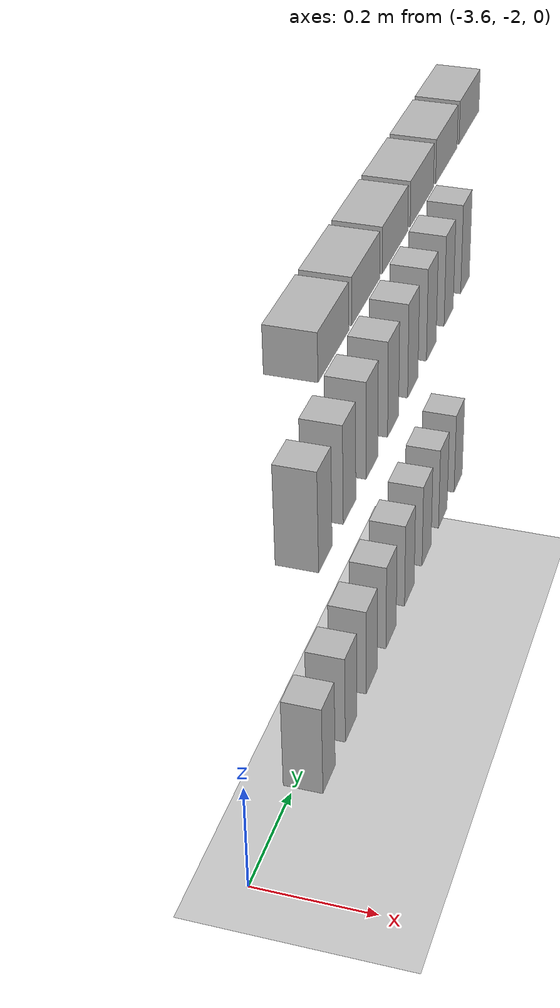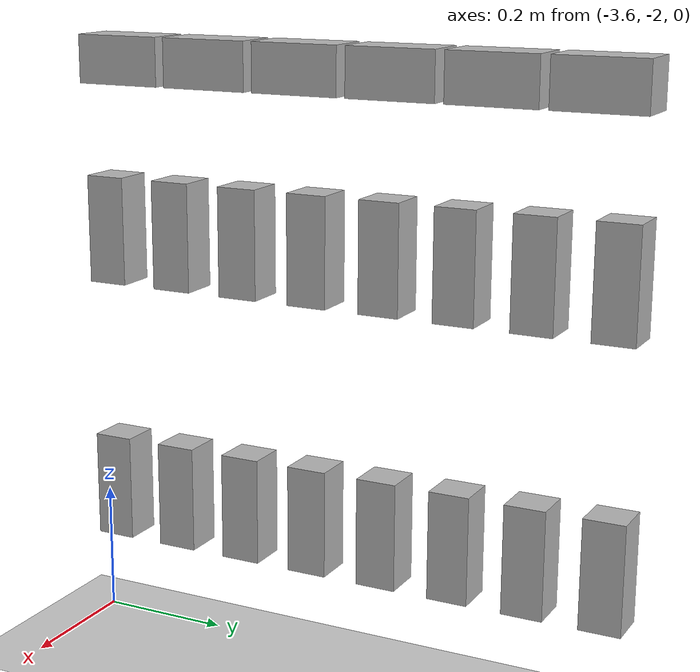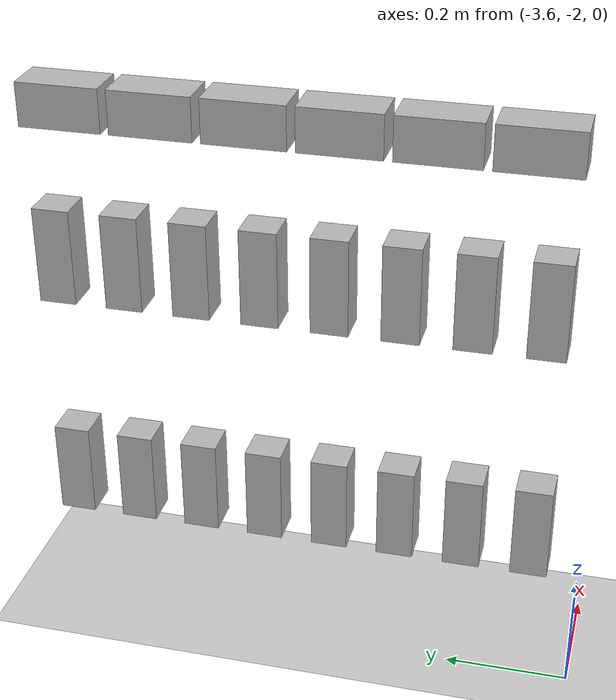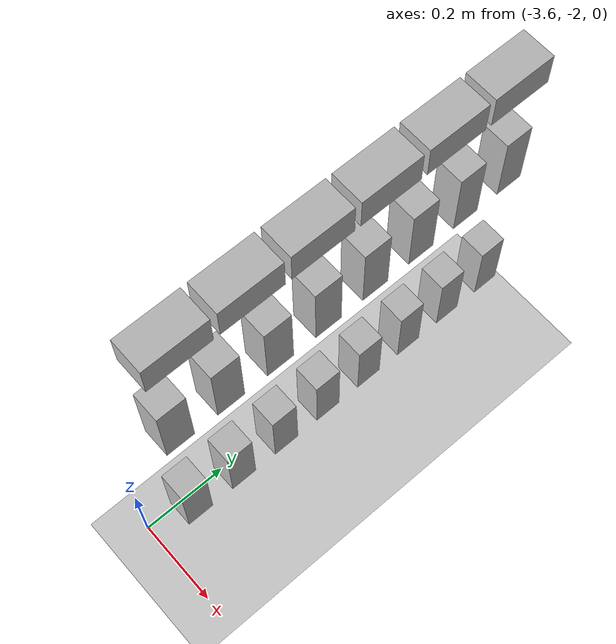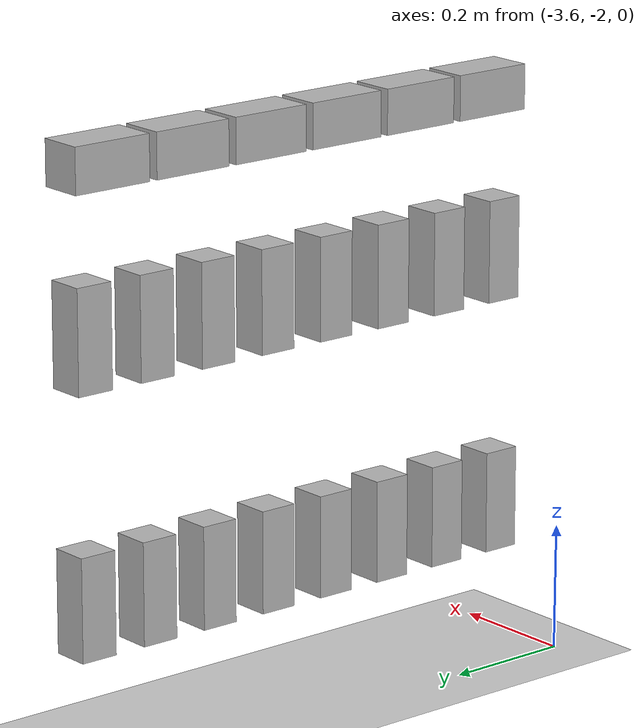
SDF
<sdf version="1.7">
 <world name="default">
  <model name="ground_plane">
   <static>1</static>
   <link name="link">
    <collision name="collision">
     <geometry><plane><normal>0 0 1</normal><size>100 100</size></plane></geometry>
     <surface>
      <contact><collide_bitmask>65535</collide_bitmask></contact>
      <friction><ode><mu>100</mu><mu2>50</mu2></ode></friction>
     </surface>
    </collision>
    <visual name="visual">
     <cast_shadows>0</cast_shadows>
     <geometry><plane><normal>0 0 1</normal><size>100 100</size></plane></geometry>
     <material>
      <script><uri>file://media/materials/scripts/gazebo.material</uri><name>Gazebo/Grey</name></script>
     </material>
    </visual>
   </link>
  </model>
  <model name="AH_shelf_filled">
   <static>1</static>
   <model name="board1">
    <pose>0 0.5 0.25 0 -0 0</pose>
    <static>0</static>
    <link name="AH_hagelslag_puur::link_0">
     <inertial>
      <mass>0.1</mass>
      <inertia><ixx>0.0014</ixx><ixy>0</ixy><ixz>0</ixz><iyy>0.0014</iyy><iyz>0</iyz><izz>0.0028</izz></inertia>
     </inertial>
     <pose>0.111111 0 0 0 -0 1.57</pose>
     <visual name="visual">
      <geometry>
       <mesh><uri>model://AH_hagelslag_puur/AH_hagelslag_puur/AH_hagelslag_puur.dae</uri><scale>1 1 1</scale></mesh>
      </geometry>
     </visual>
     <collision name="collision">
      <geometry>
       <mesh><uri>model://AH_hagelslag_puur/AH_hagelslag_puur/AH_hagelslag_puur.dae</uri><scale>1 1 1</scale></mesh>
      </geometry>
      <surface>
       <friction>
        <ode><mu>1</mu><mu2>1</mu2><fdir1>0 0 0</fdir1><slip1>0</slip1><slip2>0</slip2></ode>
        <torsional>
         <coefficient>1</coefficient>
         <patch_radius>0</patch_radius>
         <surface_radius>0</surface_radius>
         <use_patch_radius>1</use_patch_radius>
         <ode><slip>0</slip></ode>
        </torsional>
       </friction>
       <bounce><restitution_coefficient>0</restitution_coefficient><threshold>1e+06</threshold></bounce>
       <contact>
        <collide_without_contact>0</collide_without_contact>
        <collide_without_contact_bitmask>1</collide_without_contact_bitmask>
        <collide_bitmask>1</collide_bitmask>
        <ode>
         <soft_cfm>0</soft_cfm>
         <soft_erp>0.2</soft_erp>
         <kp>1e+13</kp>
         <kd>1</kd>
         <max_vel>0.01</max_vel>
         <min_depth>0</min_depth>
        </ode>
        <bullet>
         <split_impulse>1</split_impulse>
         <split_impulse_penetration_threshold>-0.01</split_impulse_penetration_threshold>
         <soft_cfm>0</soft_cfm>
         <soft_erp>0.2</soft_erp>
         <kp>1e+13</kp>
         <kd>1</kd>
        </bullet>
       </contact>
      </surface>
     </collision>
    </link>
    <static>0</static>
    <link name="AH_hagelslag_puur::link_0">
     <inertial>
      <mass>0.1</mass>
      <inertia><ixx>0.0014</ixx><ixy>0</ixy><ixz>0</ixz><iyy>0.0014</iyy><iyz>0</iyz><izz>0.0028</izz></inertia>
     </inertial>
     <pose>0.222222 0 0 0 -0 1.57</pose>
     <visual name="visual">
      <geometry>
       <mesh><uri>model://AH_hagelslag_puur/AH_hagelslag_puur/AH_hagelslag_puur.dae</uri><scale>1 1 1</scale></mesh>
      </geometry>
     </visual>
     <collision name="collision">
      <geometry>
       <mesh><uri>model://AH_hagelslag_puur/AH_hagelslag_puur/AH_hagelslag_puur.dae</uri><scale>1 1 1</scale></mesh>
      </geometry>
      <surface>
       <friction>
        <ode><mu>1</mu><mu2>1</mu2><fdir1>0 0 0</fdir1><slip1>0</slip1><slip2>0</slip2></ode>
        <torsional>
         <coefficient>1</coefficient>
         <patch_radius>0</patch_radius>
         <surface_radius>0</surface_radius>
         <use_patch_radius>1</use_patch_radius>
         <ode><slip>0</slip></ode>
        </torsional>
       </friction>
       <bounce><restitution_coefficient>0</restitution_coefficient><threshold>1e+06</threshold></bounce>
       <contact>
        <collide_without_contact>0</collide_without_contact>
        <collide_without_contact_bitmask>1</collide_without_contact_bitmask>
        <collide_bitmask>1</collide_bitmask>
        <ode>
         <soft_cfm>0</soft_cfm>
         <soft_erp>0.2</soft_erp>
         <kp>1e+13</kp>
         <kd>1</kd>
         <max_vel>0.01</max_vel>
         <min_depth>0</min_depth>
        </ode>
        <bullet>
         <split_impulse>1</split_impulse>
         <split_impulse_penetration_threshold>-0.01</split_impulse_penetration_threshold>
         <soft_cfm>0</soft_cfm>
         <soft_erp>0.2</soft_erp>
         <kp>1e+13</kp>
         <kd>1</kd>
        </bullet>
       </contact>
      </surface>
     </collision>
    </link>
    <static>0</static>
    <link name="AH_hagelslag_puur::link_0">
     <inertial>
      <mass>0.1</mass>
      <inertia><ixx>0.0014</ixx><ixy>0</ixy><ixz>0</ixz><iyy>0.0014</iyy><iyz>0</iyz><izz>0.0028</izz></inertia>
     </inertial>
     <pose>0.333333 0 0 0 -0 1.57</pose>
     <visual name="visual">
      <geometry>
       <mesh><uri>model://AH_hagelslag_puur/AH_hagelslag_puur/AH_hagelslag_puur.dae</uri><scale>1 1 1</scale></mesh>
      </geometry>
     </visual>
     <collision name="collision">
      <geometry>
       <mesh><uri>model://AH_hagelslag_puur/AH_hagelslag_puur/AH_hagelslag_puur.dae</uri><scale>1 1 1</scale></mesh>
      </geometry>
      <surface>
       <friction>
        <ode><mu>1</mu><mu2>1</mu2><fdir1>0 0 0</fdir1><slip1>0</slip1><slip2>0</slip2></ode>
        <torsional>
         <coefficient>1</coefficient>
         <patch_radius>0</patch_radius>
         <surface_radius>0</surface_radius>
         <use_patch_radius>1</use_patch_radius>
         <ode><slip>0</slip></ode>
        </torsional>
       </friction>
       <bounce><restitution_coefficient>0</restitution_coefficient><threshold>1e+06</threshold></bounce>
       <contact>
        <collide_without_contact>0</collide_without_contact>
        <collide_without_contact_bitmask>1</collide_without_contact_bitmask>
        <collide_bitmask>1</collide_bitmask>
        <ode>
         <soft_cfm>0</soft_cfm>
         <soft_erp>0.2</soft_erp>
         <kp>1e+13</kp>
         <kd>1</kd>
         <max_vel>0.01</max_vel>
         <min_depth>0</min_depth>
        </ode>
        <bullet>
         <split_impulse>1</split_impulse>
         <split_impulse_penetration_threshold>-0.01</split_impulse_penetration_threshold>
         <soft_cfm>0</soft_cfm>
         <soft_erp>0.2</soft_erp>
         <kp>1e+13</kp>
         <kd>1</kd>
        </bullet>
       </contact>
      </surface>
     </collision>
    </link>
    <static>0</static>
    <link name="AH_hagelslag_puur::link_0">
     <inertial>
      <mass>0.1</mass>
      <inertia><ixx>0.0014</ixx><ixy>0</ixy><ixz>0</ixz><iyy>0.0014</iyy><iyz>0</iyz><izz>0.0028</izz></inertia>
     </inertial>
     <pose>0.444444 0 0 0 -0 1.57</pose>
     <visual name="visual">
      <geometry>
       <mesh><uri>model://AH_hagelslag_puur/AH_hagelslag_puur/AH_hagelslag_puur.dae</uri><scale>1 1 1</scale></mesh>
      </geometry>
     </visual>
     <collision name="collision">
      <geometry>
       <mesh><uri>model://AH_hagelslag_puur/AH_hagelslag_puur/AH_hagelslag_puur.dae</uri><scale>1 1 1</scale></mesh>
      </geometry>
      <surface>
       <friction>
        <ode><mu>1</mu><mu2>1</mu2><fdir1>0 0 0</fdir1><slip1>0</slip1><slip2>0</slip2></ode>
        <torsional>
         <coefficient>1</coefficient>
         <patch_radius>0</patch_radius>
         <surface_radius>0</surface_radius>
         <use_patch_radius>1</use_patch_radius>
         <ode><slip>0</slip></ode>
        </torsional>
       </friction>
       <bounce><restitution_coefficient>0</restitution_coefficient><threshold>1e+06</threshold></bounce>
       <contact>
        <collide_without_contact>0</collide_without_contact>
        <collide_without_contact_bitmask>1</collide_without_contact_bitmask>
        <collide_bitmask>1</collide_bitmask>
        <ode>
         <soft_cfm>0</soft_cfm>
         <soft_erp>0.2</soft_erp>
         <kp>1e+13</kp>
         <kd>1</kd>
         <max_vel>0.01</max_vel>
         <min_depth>0</min_depth>
        </ode>
        <bullet>
         <split_impulse>1</split_impulse>
         <split_impulse_penetration_threshold>-0.01</split_impulse_penetration_threshold>
         <soft_cfm>0</soft_cfm>
         <soft_erp>0.2</soft_erp>
         <kp>1e+13</kp>
         <kd>1</kd>
        </bullet>
       </contact>
      </surface>
     </collision>
    </link>
    <static>0</static>
    <link name="AH_hagelslag_puur::link_0">
     <inertial>
      <mass>0.1</mass>
      <inertia><ixx>0.0014</ixx><ixy>0</ixy><ixz>0</ixz><iyy>0.0014</iyy><iyz>0</iyz><izz>0.0028</izz></inertia>
     </inertial>
     <pose>0.555556 0 0 0 -0 1.57</pose>
     <visual name="visual">
      <geometry>
       <mesh><uri>model://AH_hagelslag_puur/AH_hagelslag_puur/AH_hagelslag_puur.dae</uri><scale>1 1 1</scale></mesh>
      </geometry>
     </visual>
     <collision name="collision">
      <geometry>
       <mesh><uri>model://AH_hagelslag_puur/AH_hagelslag_puur/AH_hagelslag_puur.dae</uri><scale>1 1 1</scale></mesh>
      </geometry>
      <surface>
       <friction>
        <ode><mu>1</mu><mu2>1</mu2><fdir1>0 0 0</fdir1><slip1>0</slip1><slip2>0</slip2></ode>
        <torsional>
         <coefficient>1</coefficient>
         <patch_radius>0</patch_radius>
         <surface_radius>0</surface_radius>
         <use_patch_radius>1</use_patch_radius>
         <ode><slip>0</slip></ode>
        </torsional>
       </friction>
       <bounce><restitution_coefficient>0</restitution_coefficient><threshold>1e+06</threshold></bounce>
       <contact>
        <collide_without_contact>0</collide_without_contact>
        <collide_without_contact_bitmask>1</collide_without_contact_bitmask>
        <collide_bitmask>1</collide_bitmask>
        <ode>
         <soft_cfm>0</soft_cfm>
         <soft_erp>0.2</soft_erp>
         <kp>1e+13</kp>
         <kd>1</kd>
         <max_vel>0.01</max_vel>
         <min_depth>0</min_depth>
        </ode>
        <bullet>
         <split_impulse>1</split_impulse>
         <split_impulse_penetration_threshold>-0.01</split_impulse_penetration_threshold>
         <soft_cfm>0</soft_cfm>
         <soft_erp>0.2</soft_erp>
         <kp>1e+13</kp>
         <kd>1</kd>
        </bullet>
       </contact>
      </surface>
     </collision>
    </link>
    <static>0</static>
    <link name="AH_hagelslag_puur::link_0">
     <inertial>
      <mass>0.1</mass>
      <inertia><ixx>0.0014</ixx><ixy>0</ixy><ixz>0</ixz><iyy>0.0014</iyy><iyz>0</iyz><izz>0.0028</izz></inertia>
     </inertial>
     <pose>0.666667 0 0 0 -0 1.57</pose>
     <visual name="visual">
      <geometry>
       <mesh><uri>model://AH_hagelslag_puur/AH_hagelslag_puur/AH_hagelslag_puur.dae</uri><scale>1 1 1</scale></mesh>
      </geometry>
     </visual>
     <collision name="collision">
      <geometry>
       <mesh><uri>model://AH_hagelslag_puur/AH_hagelslag_puur/AH_hagelslag_puur.dae</uri><scale>1 1 1</scale></mesh>
      </geometry>
      <surface>
       <friction>
        <ode><mu>1</mu><mu2>1</mu2><fdir1>0 0 0</fdir1><slip1>0</slip1><slip2>0</slip2></ode>
        <torsional>
         <coefficient>1</coefficient>
         <patch_radius>0</patch_radius>
         <surface_radius>0</surface_radius>
         <use_patch_radius>1</use_patch_radius>
         <ode><slip>0</slip></ode>
        </torsional>
       </friction>
       <bounce><restitution_coefficient>0</restitution_coefficient><threshold>1e+06</threshold></bounce>
       <contact>
        <collide_without_contact>0</collide_without_contact>
        <collide_without_contact_bitmask>1</collide_without_contact_bitmask>
        <collide_bitmask>1</collide_bitmask>
        <ode>
         <soft_cfm>0</soft_cfm>
         <soft_erp>0.2</soft_erp>
         <kp>1e+13</kp>
         <kd>1</kd>
         <max_vel>0.01</max_vel>
         <min_depth>0</min_depth>
        </ode>
        <bullet>
         <split_impulse>1</split_impulse>
         <split_impulse_penetration_threshold>-0.01</split_impulse_penetration_threshold>
         <soft_cfm>0</soft_cfm>
         <soft_erp>0.2</soft_erp>
         <kp>1e+13</kp>
         <kd>1</kd>
        </bullet>
       </contact>
      </surface>
     </collision>
    </link>
    <static>0</static>
    <link name="AH_hagelslag_puur::link_0">
     <inertial>
      <mass>0.1</mass>
      <inertia><ixx>0.0014</ixx><ixy>0</ixy><ixz>0</ixz><iyy>0.0014</iyy><iyz>0</iyz><izz>0.0028</izz></inertia>
     </inertial>
     <pose>0.777778 0 0 0 -0 1.57</pose>
     <visual name="visual">
      <geometry>
       <mesh><uri>model://AH_hagelslag_puur/AH_hagelslag_puur/AH_hagelslag_puur.dae</uri><scale>1 1 1</scale></mesh>
      </geometry>
     </visual>
     <collision name="collision">
      <geometry>
       <mesh><uri>model://AH_hagelslag_puur/AH_hagelslag_puur/AH_hagelslag_puur.dae</uri><scale>1 1 1</scale></mesh>
      </geometry>
      <surface>
       <friction>
        <ode><mu>1</mu><mu2>1</mu2><fdir1>0 0 0</fdir1><slip1>0</slip1><slip2>0</slip2></ode>
        <torsional>
         <coefficient>1</coefficient>
         <patch_radius>0</patch_radius>
         <surface_radius>0</surface_radius>
         <use_patch_radius>1</use_patch_radius>
         <ode><slip>0</slip></ode>
        </torsional>
       </friction>
       <bounce><restitution_coefficient>0</restitution_coefficient><threshold>1e+06</threshold></bounce>
       <contact>
        <collide_without_contact>0</collide_without_contact>
        <collide_without_contact_bitmask>1</collide_without_contact_bitmask>
        <collide_bitmask>1</collide_bitmask>
        <ode>
         <soft_cfm>0</soft_cfm>
         <soft_erp>0.2</soft_erp>
         <kp>1e+13</kp>
         <kd>1</kd>
         <max_vel>0.01</max_vel>
         <min_depth>0</min_depth>
        </ode>
        <bullet>
         <split_impulse>1</split_impulse>
         <split_impulse_penetration_threshold>-0.01</split_impulse_penetration_threshold>
         <soft_cfm>0</soft_cfm>
         <soft_erp>0.2</soft_erp>
         <kp>1e+13</kp>
         <kd>1</kd>
        </bullet>
       </contact>
      </surface>
     </collision>
    </link>
    <static>0</static>
    <link name="AH_hagelslag_puur::link_0">
     <inertial>
      <mass>0.1</mass>
      <inertia><ixx>0.0014</ixx><ixy>0</ixy><ixz>0</ixz><iyy>0.0014</iyy><iyz>0</iyz><izz>0.0028</izz></inertia>
     </inertial>
     <pose>0.888889 0 0 0 -0 1.57</pose>
     <visual name="visual">
      <geometry>
       <mesh><uri>model://AH_hagelslag_puur/AH_hagelslag_puur/AH_hagelslag_puur.dae</uri><scale>1 1 1</scale></mesh>
      </geometry>
     </visual>
     <collision name="collision">
      <geometry>
       <mesh><uri>model://AH_hagelslag_puur/AH_hagelslag_puur/AH_hagelslag_puur.dae</uri><scale>1 1 1</scale></mesh>
      </geometry>
      <surface>
       <friction>
        <ode><mu>1</mu><mu2>1</mu2><fdir1>0 0 0</fdir1><slip1>0</slip1><slip2>0</slip2></ode>
        <torsional>
         <coefficient>1</coefficient>
         <patch_radius>0</patch_radius>
         <surface_radius>0</surface_radius>
         <use_patch_radius>1</use_patch_radius>
         <ode><slip>0</slip></ode>
        </torsional>
       </friction>
       <bounce><restitution_coefficient>0</restitution_coefficient><threshold>1e+06</threshold></bounce>
       <contact>
        <collide_without_contact>0</collide_without_contact>
        <collide_without_contact_bitmask>1</collide_without_contact_bitmask>
        <collide_bitmask>1</collide_bitmask>
        <ode>
         <soft_cfm>0</soft_cfm>
         <soft_erp>0.2</soft_erp>
         <kp>1e+13</kp>
         <kd>1</kd>
         <max_vel>0.01</max_vel>
         <min_depth>0</min_depth>
        </ode>
        <bullet>
         <split_impulse>1</split_impulse>
         <split_impulse_penetration_threshold>-0.01</split_impulse_penetration_threshold>
         <soft_cfm>0</soft_cfm>
         <soft_erp>0.2</soft_erp>
         <kp>1e+13</kp>
         <kd>1</kd>
        </bullet>
       </contact>
      </surface>
     </collision>
    </link>
   </model>
   <model name="board2">
    <pose>0 0.5 0.65 0 -0 0</pose>
    <static>0</static>
    <link name="AH_hagelslag_melk::link_0">
     <inertial>
      <mass>0.1</mass>
      <inertia><ixx>0.0014</ixx><ixy>0</ixy><ixz>0</ixz><iyy>0.0014</iyy><iyz>0</iyz><izz>0.0028</izz></inertia>
     </inertial>
     <pose>0.111111 0 0 0 -0 1.57</pose>
     <visual name="visual">
      <geometry>
       <mesh><uri>model://AH_hagelslag_melk/AH_hagelslag_melk/AH_hagelslag_melk.dae</uri><scale>1 1 1</scale></mesh>
      </geometry>
     </visual>
     <collision name="collision">
      <geometry>
       <mesh><uri>model://AH_hagelslag_melk/AH_hagelslag_melk/AH_hagelslag_melk.dae</uri><scale>1 1 1</scale></mesh>
      </geometry>
      <surface>
       <friction>
        <ode><mu>1</mu><mu2>1</mu2><fdir1>0 0 0</fdir1><slip1>0</slip1><slip2>0</slip2></ode>
        <torsional>
         <coefficient>1</coefficient>
         <patch_radius>0</patch_radius>
         <surface_radius>0</surface_radius>
         <use_patch_radius>1</use_patch_radius>
         <ode><slip>0</slip></ode>
        </torsional>
       </friction>
       <bounce><restitution_coefficient>0</restitution_coefficient><threshold>1e+06</threshold></bounce>
       <contact>
        <collide_without_contact>0</collide_without_contact>
        <collide_without_contact_bitmask>1</collide_without_contact_bitmask>
        <collide_bitmask>1</collide_bitmask>
        <ode>
         <soft_cfm>0</soft_cfm>
         <soft_erp>0.2</soft_erp>
         <kp>1e+13</kp>
         <kd>1</kd>
         <max_vel>0.01</max_vel>
         <min_depth>0</min_depth>
        </ode>
        <bullet>
         <split_impulse>1</split_impulse>
         <split_impulse_penetration_threshold>-0.01</split_impulse_penetration_threshold>
         <soft_cfm>0</soft_cfm>
         <soft_erp>0.2</soft_erp>
         <kp>1e+13</kp>
         <kd>1</kd>
        </bullet>
       </contact>
      </surface>
     </collision>
    </link>
    <static>0</static>
    <link name="AH_hagelslag_melk::link_0">
     <inertial>
      <mass>0.1</mass>
      <inertia><ixx>0.0014</ixx><ixy>0</ixy><ixz>0</ixz><iyy>0.0014</iyy><iyz>0</iyz><izz>0.0028</izz></inertia>
     </inertial>
     <pose>0.222222 0 0 0 -0 1.57</pose>
     <visual name="visual">
      <geometry>
       <mesh><uri>model://AH_hagelslag_melk/AH_hagelslag_melk/AH_hagelslag_melk.dae</uri><scale>1 1 1</scale></mesh>
      </geometry>
     </visual>
     <collision name="collision">
      <geometry>
       <mesh><uri>model://AH_hagelslag_melk/AH_hagelslag_melk/AH_hagelslag_melk.dae</uri><scale>1 1 1</scale></mesh>
      </geometry>
      <surface>
       <friction>
        <ode><mu>1</mu><mu2>1</mu2><fdir1>0 0 0</fdir1><slip1>0</slip1><slip2>0</slip2></ode>
        <torsional>
         <coefficient>1</coefficient>
         <patch_radius>0</patch_radius>
         <surface_radius>0</surface_radius>
         <use_patch_radius>1</use_patch_radius>
         <ode><slip>0</slip></ode>
        </torsional>
       </friction>
       <bounce><restitution_coefficient>0</restitution_coefficient><threshold>1e+06</threshold></bounce>
       <contact>
        <collide_without_contact>0</collide_without_contact>
        <collide_without_contact_bitmask>1</collide_without_contact_bitmask>
        <collide_bitmask>1</collide_bitmask>
        <ode>
         <soft_cfm>0</soft_cfm>
         <soft_erp>0.2</soft_erp>
         <kp>1e+13</kp>
         <kd>1</kd>
         <max_vel>0.01</max_vel>
         <min_depth>0</min_depth>
        </ode>
        <bullet>
         <split_impulse>1</split_impulse>
         <split_impulse_penetration_threshold>-0.01</split_impulse_penetration_threshold>
         <soft_cfm>0</soft_cfm>
         <soft_erp>0.2</soft_erp>
         <kp>1e+13</kp>
         <kd>1</kd>
        </bullet>
       </contact>
      </surface>
     </collision>
    </link>
    <static>0</static>
    <link name="AH_hagelslag_melk::link_0">
     <inertial>
      <mass>0.1</mass>
      <inertia><ixx>0.0014</ixx><ixy>0</ixy><ixz>0</ixz><iyy>0.0014</iyy><iyz>0</iyz><izz>0.0028</izz></inertia>
     </inertial>
     <pose>0.333333 0 0 0 -0 1.57</pose>
     <visual name="visual">
      <geometry>
       <mesh><uri>model://AH_hagelslag_melk/AH_hagelslag_melk/AH_hagelslag_melk.dae</uri><scale>1 1 1</scale></mesh>
      </geometry>
     </visual>
     <collision name="collision">
      <geometry>
       <mesh><uri>model://AH_hagelslag_melk/AH_hagelslag_melk/AH_hagelslag_melk.dae</uri><scale>1 1 1</scale></mesh>
      </geometry>
      <surface>
       <friction>
        <ode><mu>1</mu><mu2>1</mu2><fdir1>0 0 0</fdir1><slip1>0</slip1><slip2>0</slip2></ode>
        <torsional>
         <coefficient>1</coefficient>
         <patch_radius>0</patch_radius>
         <surface_radius>0</surface_radius>
         <use_patch_radius>1</use_patch_radius>
         <ode><slip>0</slip></ode>
        </torsional>
       </friction>
       <bounce><restitution_coefficient>0</restitution_coefficient><threshold>1e+06</threshold></bounce>
       <contact>
        <collide_without_contact>0</collide_without_contact>
        <collide_without_contact_bitmask>1</collide_without_contact_bitmask>
        <collide_bitmask>1</collide_bitmask>
        <ode>
         <soft_cfm>0</soft_cfm>
         <soft_erp>0.2</soft_erp>
         <kp>1e+13</kp>
         <kd>1</kd>
         <max_vel>0.01</max_vel>
         <min_depth>0</min_depth>
        </ode>
        <bullet>
         <split_impulse>1</split_impulse>
         <split_impulse_penetration_threshold>-0.01</split_impulse_penetration_threshold>
         <soft_cfm>0</soft_cfm>
         <soft_erp>0.2</soft_erp>
         <kp>1e+13</kp>
         <kd>1</kd>
        </bullet>
       </contact>
      </surface>
     </collision>
    </link>
    <static>0</static>
    <link name="AH_hagelslag_melk::link_0">
     <inertial>
      <mass>0.1</mass>
      <inertia><ixx>0.0014</ixx><ixy>0</ixy><ixz>0</ixz><iyy>0.0014</iyy><iyz>0</iyz><izz>0.0028</izz></inertia>
     </inertial>
     <pose>0.444444 0 0 0 -0 1.57</pose>
     <visual name="visual">
      <geometry>
       <mesh><uri>model://AH_hagelslag_melk/AH_hagelslag_melk/AH_hagelslag_melk.dae</uri><scale>1 1 1</scale></mesh>
      </geometry>
     </visual>
     <collision name="collision">
      <geometry>
       <mesh><uri>model://AH_hagelslag_melk/AH_hagelslag_melk/AH_hagelslag_melk.dae</uri><scale>1 1 1</scale></mesh>
      </geometry>
      <surface>
       <friction>
        <ode><mu>1</mu><mu2>1</mu2><fdir1>0 0 0</fdir1><slip1>0</slip1><slip2>0</slip2></ode>
        <torsional>
         <coefficient>1</coefficient>
         <patch_radius>0</patch_radius>
         <surface_radius>0</surface_radius>
         <use_patch_radius>1</use_patch_radius>
         <ode><slip>0</slip></ode>
        </torsional>
       </friction>
       <bounce><restitution_coefficient>0</restitution_coefficient><threshold>1e+06</threshold></bounce>
       <contact>
        <collide_without_contact>0</collide_without_contact>
        <collide_without_contact_bitmask>1</collide_without_contact_bitmask>
        <collide_bitmask>1</collide_bitmask>
        <ode>
         <soft_cfm>0</soft_cfm>
         <soft_erp>0.2</soft_erp>
         <kp>1e+13</kp>
         <kd>1</kd>
         <max_vel>0.01</max_vel>
         <min_depth>0</min_depth>
        </ode>
        <bullet>
         <split_impulse>1</split_impulse>
         <split_impulse_penetration_threshold>-0.01</split_impulse_penetration_threshold>
         <soft_cfm>0</soft_cfm>
         <soft_erp>0.2</soft_erp>
         <kp>1e+13</kp>
         <kd>1</kd>
        </bullet>
       </contact>
      </surface>
     </collision>
    </link>
    <static>0</static>
    <link name="AH_hagelslag_melk::link_0">
     <inertial>
      <mass>0.1</mass>
      <inertia><ixx>0.0014</ixx><ixy>0</ixy><ixz>0</ixz><iyy>0.0014</iyy><iyz>0</iyz><izz>0.0028</izz></inertia>
     </inertial>
     <pose>0.555556 0 0 0 -0 1.57</pose>
     <visual name="visual">
      <geometry>
       <mesh><uri>model://AH_hagelslag_melk/AH_hagelslag_melk/AH_hagelslag_melk.dae</uri><scale>1 1 1</scale></mesh>
      </geometry>
     </visual>
     <collision name="collision">
      <geometry>
       <mesh><uri>model://AH_hagelslag_melk/AH_hagelslag_melk/AH_hagelslag_melk.dae</uri><scale>1 1 1</scale></mesh>
      </geometry>
      <surface>
       <friction>
        <ode><mu>1</mu><mu2>1</mu2><fdir1>0 0 0</fdir1><slip1>0</slip1><slip2>0</slip2></ode>
        <torsional>
         <coefficient>1</coefficient>
         <patch_radius>0</patch_radius>
         <surface_radius>0</surface_radius>
         <use_patch_radius>1</use_patch_radius>
         <ode><slip>0</slip></ode>
        </torsional>
       </friction>
       <bounce><restitution_coefficient>0</restitution_coefficient><threshold>1e+06</threshold></bounce>
       <contact>
        <collide_without_contact>0</collide_without_contact>
        <collide_without_contact_bitmask>1</collide_without_contact_bitmask>
        <collide_bitmask>1</collide_bitmask>
        <ode>
         <soft_cfm>0</soft_cfm>
         <soft_erp>0.2</soft_erp>
         <kp>1e+13</kp>
         <kd>1</kd>
         <max_vel>0.01</max_vel>
         <min_depth>0</min_depth>
        </ode>
        <bullet>
         <split_impulse>1</split_impulse>
         <split_impulse_penetration_threshold>-0.01</split_impulse_penetration_threshold>
         <soft_cfm>0</soft_cfm>
         <soft_erp>0.2</soft_erp>
         <kp>1e+13</kp>
         <kd>1</kd>
        </bullet>
       </contact>
      </surface>
     </collision>
    </link>
    <static>0</static>
    <link name="AH_hagelslag_melk::link_0">
     <inertial>
      <mass>0.1</mass>
      <inertia><ixx>0.0014</ixx><ixy>0</ixy><ixz>0</ixz><iyy>0.0014</iyy><iyz>0</iyz><izz>0.0028</izz></inertia>
     </inertial>
     <pose>0.666667 0 0 0 -0 1.57</pose>
     <visual name="visual">
      <geometry>
       <mesh><uri>model://AH_hagelslag_melk/AH_hagelslag_melk/AH_hagelslag_melk.dae</uri><scale>1 1 1</scale></mesh>
      </geometry>
     </visual>
     <collision name="collision">
      <geometry>
       <mesh><uri>model://AH_hagelslag_melk/AH_hagelslag_melk/AH_hagelslag_melk.dae</uri><scale>1 1 1</scale></mesh>
      </geometry>
      <surface>
       <friction>
        <ode><mu>1</mu><mu2>1</mu2><fdir1>0 0 0</fdir1><slip1>0</slip1><slip2>0</slip2></ode>
        <torsional>
         <coefficient>1</coefficient>
         <patch_radius>0</patch_radius>
         <surface_radius>0</surface_radius>
         <use_patch_radius>1</use_patch_radius>
         <ode><slip>0</slip></ode>
        </torsional>
       </friction>
       <bounce><restitution_coefficient>0</restitution_coefficient><threshold>1e+06</threshold></bounce>
       <contact>
        <collide_without_contact>0</collide_without_contact>
        <collide_without_contact_bitmask>1</collide_without_contact_bitmask>
        <collide_bitmask>1</collide_bitmask>
        <ode>
         <soft_cfm>0</soft_cfm>
         <soft_erp>0.2</soft_erp>
         <kp>1e+13</kp>
         <kd>1</kd>
         <max_vel>0.01</max_vel>
         <min_depth>0</min_depth>
        </ode>
        <bullet>
         <split_impulse>1</split_impulse>
         <split_impulse_penetration_threshold>-0.01</split_impulse_penetration_threshold>
         <soft_cfm>0</soft_cfm>
         <soft_erp>0.2</soft_erp>
         <kp>1e+13</kp>
         <kd>1</kd>
        </bullet>
       </contact>
      </surface>
     </collision>
    </link>
    <static>0</static>
    <link name="AH_hagelslag_melk::link_0">
     <inertial>
      <mass>0.1</mass>
      <inertia><ixx>0.0014</ixx><ixy>0</ixy><ixz>0</ixz><iyy>0.0014</iyy><iyz>0</iyz><izz>0.0028</izz></inertia>
     </inertial>
     <pose>0.777778 0 0 0 -0 1.57</pose>
     <visual name="visual">
      <geometry>
       <mesh><uri>model://AH_hagelslag_melk/AH_hagelslag_melk/AH_hagelslag_melk.dae</uri><scale>1 1 1</scale></mesh>
      </geometry>
     </visual>
     <collision name="collision">
      <geometry>
       <mesh><uri>model://AH_hagelslag_melk/AH_hagelslag_melk/AH_hagelslag_melk.dae</uri><scale>1 1 1</scale></mesh>
      </geometry>
      <surface>
       <friction>
        <ode><mu>1</mu><mu2>1</mu2><fdir1>0 0 0</fdir1><slip1>0</slip1><slip2>0</slip2></ode>
        <torsional>
         <coefficient>1</coefficient>
         <patch_radius>0</patch_radius>
         <surface_radius>0</surface_radius>
         <use_patch_radius>1</use_patch_radius>
         <ode><slip>0</slip></ode>
        </torsional>
       </friction>
       <bounce><restitution_coefficient>0</restitution_coefficient><threshold>1e+06</threshold></bounce>
       <contact>
        <collide_without_contact>0</collide_without_contact>
        <collide_without_contact_bitmask>1</collide_without_contact_bitmask>
        <collide_bitmask>1</collide_bitmask>
        <ode>
         <soft_cfm>0</soft_cfm>
         <soft_erp>0.2</soft_erp>
         <kp>1e+13</kp>
         <kd>1</kd>
         <max_vel>0.01</max_vel>
         <min_depth>0</min_depth>
        </ode>
        <bullet>
         <split_impulse>1</split_impulse>
         <split_impulse_penetration_threshold>-0.01</split_impulse_penetration_threshold>
         <soft_cfm>0</soft_cfm>
         <soft_erp>0.2</soft_erp>
         <kp>1e+13</kp>
         <kd>1</kd>
        </bullet>
       </contact>
      </surface>
     </collision>
    </link>
    <static>0</static>
    <link name="AH_hagelslag_melk::link_0">
     <inertial>
      <mass>0.1</mass>
      <inertia><ixx>0.0014</ixx><ixy>0</ixy><ixz>0</ixz><iyy>0.0014</iyy><iyz>0</iyz><izz>0.0028</izz></inertia>
     </inertial>
     <pose>0.888889 0 0 0 -0 1.57</pose>
     <visual name="visual">
      <geometry>
       <mesh><uri>model://AH_hagelslag_melk/AH_hagelslag_melk/AH_hagelslag_melk.dae</uri><scale>1 1 1</scale></mesh>
      </geometry>
     </visual>
     <collision name="collision">
      <geometry>
       <mesh><uri>model://AH_hagelslag_melk/AH_hagelslag_melk/AH_hagelslag_melk.dae</uri><scale>1 1 1</scale></mesh>
      </geometry>
      <surface>
       <friction>
        <ode><mu>1</mu><mu2>1</mu2><fdir1>0 0 0</fdir1><slip1>0</slip1><slip2>0</slip2></ode>
        <torsional>
         <coefficient>1</coefficient>
         <patch_radius>0</patch_radius>
         <surface_radius>0</surface_radius>
         <use_patch_radius>1</use_patch_radius>
         <ode><slip>0</slip></ode>
        </torsional>
       </friction>
       <bounce><restitution_coefficient>0</restitution_coefficient><threshold>1e+06</threshold></bounce>
       <contact>
        <collide_without_contact>0</collide_without_contact>
        <collide_without_contact_bitmask>1</collide_without_contact_bitmask>
        <collide_bitmask>1</collide_bitmask>
        <ode>
         <soft_cfm>0</soft_cfm>
         <soft_erp>0.2</soft_erp>
         <kp>1e+13</kp>
         <kd>1</kd>
         <max_vel>0.01</max_vel>
         <min_depth>0</min_depth>
        </ode>
        <bullet>
         <split_impulse>1</split_impulse>
         <split_impulse_penetration_threshold>-0.01</split_impulse_penetration_threshold>
         <soft_cfm>0</soft_cfm>
         <soft_erp>0.2</soft_erp>
         <kp>1e+13</kp>
         <kd>1</kd>
        </bullet>
       </contact>
      </surface>
     </collision>
    </link>
   </model>
   <model name="board3">
    <pose>0 0.5 0.9 0 -0 0</pose>
    <static>0</static>
    <link name="AH_thee_bosvruchten::link_0">
     <inertial>
      <mass>0.1</mass>
      <inertia><ixx>0.0014</ixx><ixy>0</ixy><ixz>0</ixz><iyy>0.0014</iyy><iyz>0</iyz><izz>0.0028</izz></inertia>
     </inertial>
     <pose>0.142857 0 0 0 -0 1.57</pose>
     <visual name="visual">
      <geometry>
       <mesh>
        <uri>model://AH_thee_bosvruchten/AH_thee_bosvruchten/AH_thee_bosvruchten.dae</uri>
        <scale>1 1 1</scale>
       </mesh>
      </geometry>
     </visual>
     <collision name="collision">
      <geometry>
       <mesh>
        <uri>model://AH_thee_bosvruchten/AH_thee_bosvruchten/AH_thee_bosvruchten.dae</uri>
        <scale>1 1 1</scale>
       </mesh>
      </geometry>
      <surface>
       <friction>
        <ode><mu>1</mu><mu2>1</mu2><fdir1>0 0 0</fdir1><slip1>0</slip1><slip2>0</slip2></ode>
        <torsional>
         <coefficient>1</coefficient>
         <patch_radius>0</patch_radius>
         <surface_radius>0</surface_radius>
         <use_patch_radius>1</use_patch_radius>
         <ode><slip>0</slip></ode>
        </torsional>
       </friction>
       <bounce><restitution_coefficient>0</restitution_coefficient><threshold>1e+06</threshold></bounce>
       <contact>
        <collide_without_contact>0</collide_without_contact>
        <collide_without_contact_bitmask>1</collide_without_contact_bitmask>
        <collide_bitmask>1</collide_bitmask>
        <ode>
         <soft_cfm>0</soft_cfm>
         <soft_erp>0.2</soft_erp>
         <kp>1e+13</kp>
         <kd>1</kd>
         <max_vel>0.01</max_vel>
         <min_depth>0</min_depth>
        </ode>
        <bullet>
         <split_impulse>1</split_impulse>
         <split_impulse_penetration_threshold>-0.01</split_impulse_penetration_threshold>
         <soft_cfm>0</soft_cfm>
         <soft_erp>0.2</soft_erp>
         <kp>1e+13</kp>
         <kd>1</kd>
        </bullet>
       </contact>
      </surface>
     </collision>
    </link>
    <static>0</static>
    <link name="AH_thee_bosvruchten::link_0">
     <inertial>
      <mass>0.1</mass>
      <inertia><ixx>0.0014</ixx><ixy>0</ixy><ixz>0</ixz><iyy>0.0014</iyy><iyz>0</iyz><izz>0.0028</izz></inertia>
     </inertial>
     <pose>0.285714 0 0 0 -0 1.57</pose>
     <visual name="visual">
      <geometry>
       <mesh>
        <uri>model://AH_thee_bosvruchten/AH_thee_bosvruchten/AH_thee_bosvruchten.dae</uri>
        <scale>1 1 1</scale>
       </mesh>
      </geometry>
     </visual>
     <collision name="collision">
      <geometry>
       <mesh>
        <uri>model://AH_thee_bosvruchten/AH_thee_bosvruchten/AH_thee_bosvruchten.dae</uri>
        <scale>1 1 1</scale>
       </mesh>
      </geometry>
      <surface>
       <friction>
        <ode><mu>1</mu><mu2>1</mu2><fdir1>0 0 0</fdir1><slip1>0</slip1><slip2>0</slip2></ode>
        <torsional>
         <coefficient>1</coefficient>
         <patch_radius>0</patch_radius>
         <surface_radius>0</surface_radius>
         <use_patch_radius>1</use_patch_radius>
         <ode><slip>0</slip></ode>
        </torsional>
       </friction>
       <bounce><restitution_coefficient>0</restitution_coefficient><threshold>1e+06</threshold></bounce>
       <contact>
        <collide_without_contact>0</collide_without_contact>
        <collide_without_contact_bitmask>1</collide_without_contact_bitmask>
        <collide_bitmask>1</collide_bitmask>
        <ode>
         <soft_cfm>0</soft_cfm>
         <soft_erp>0.2</soft_erp>
         <kp>1e+13</kp>
         <kd>1</kd>
         <max_vel>0.01</max_vel>
         <min_depth>0</min_depth>
        </ode>
        <bullet>
         <split_impulse>1</split_impulse>
         <split_impulse_penetration_threshold>-0.01</split_impulse_penetration_threshold>
         <soft_cfm>0</soft_cfm>
         <soft_erp>0.2</soft_erp>
         <kp>1e+13</kp>
         <kd>1</kd>
        </bullet>
       </contact>
      </surface>
     </collision>
    </link>
    <static>0</static>
    <link name="AH_thee_bosvruchten::link_0">
     <inertial>
      <mass>0.1</mass>
      <inertia><ixx>0.0014</ixx><ixy>0</ixy><ixz>0</ixz><iyy>0.0014</iyy><iyz>0</iyz><izz>0.0028</izz></inertia>
     </inertial>
     <pose>0.428571 0 0 0 -0 1.57</pose>
     <visual name="visual">
      <geometry>
       <mesh>
        <uri>model://AH_thee_bosvruchten/AH_thee_bosvruchten/AH_thee_bosvruchten.dae</uri>
        <scale>1 1 1</scale>
       </mesh>
      </geometry>
     </visual>
     <collision name="collision">
      <geometry>
       <mesh>
        <uri>model://AH_thee_bosvruchten/AH_thee_bosvruchten/AH_thee_bosvruchten.dae</uri>
        <scale>1 1 1</scale>
       </mesh>
      </geometry>
      <surface>
       <friction>
        <ode><mu>1</mu><mu2>1</mu2><fdir1>0 0 0</fdir1><slip1>0</slip1><slip2>0</slip2></ode>
        <torsional>
         <coefficient>1</coefficient>
         <patch_radius>0</patch_radius>
         <surface_radius>0</surface_radius>
         <use_patch_radius>1</use_patch_radius>
         <ode><slip>0</slip></ode>
        </torsional>
       </friction>
       <bounce><restitution_coefficient>0</restitution_coefficient><threshold>1e+06</threshold></bounce>
       <contact>
        <collide_without_contact>0</collide_without_contact>
        <collide_without_contact_bitmask>1</collide_without_contact_bitmask>
        <collide_bitmask>1</collide_bitmask>
        <ode>
         <soft_cfm>0</soft_cfm>
         <soft_erp>0.2</soft_erp>
         <kp>1e+13</kp>
         <kd>1</kd>
         <max_vel>0.01</max_vel>
         <min_depth>0</min_depth>
        </ode>
        <bullet>
         <split_impulse>1</split_impulse>
         <split_impulse_penetration_threshold>-0.01</split_impulse_penetration_threshold>
         <soft_cfm>0</soft_cfm>
         <soft_erp>0.2</soft_erp>
         <kp>1e+13</kp>
         <kd>1</kd>
        </bullet>
       </contact>
      </surface>
     </collision>
    </link>
    <static>0</static>
    <link name="AH_thee_bosvruchten::link_0">
     <inertial>
      <mass>0.1</mass>
      <inertia><ixx>0.0014</ixx><ixy>0</ixy><ixz>0</ixz><iyy>0.0014</iyy><iyz>0</iyz><izz>0.0028</izz></inertia>
     </inertial>
     <pose>0.571429 0 0 0 -0 1.57</pose>
     <visual name="visual">
      <geometry>
       <mesh>
        <uri>model://AH_thee_bosvruchten/AH_thee_bosvruchten/AH_thee_bosvruchten.dae</uri>
        <scale>1 1 1</scale>
       </mesh>
      </geometry>
     </visual>
     <collision name="collision">
      <geometry>
       <mesh>
        <uri>model://AH_thee_bosvruchten/AH_thee_bosvruchten/AH_thee_bosvruchten.dae</uri>
        <scale>1 1 1</scale>
       </mesh>
      </geometry>
      <surface>
       <friction>
        <ode><mu>1</mu><mu2>1</mu2><fdir1>0 0 0</fdir1><slip1>0</slip1><slip2>0</slip2></ode>
        <torsional>
         <coefficient>1</coefficient>
         <patch_radius>0</patch_radius>
         <surface_radius>0</surface_radius>
         <use_patch_radius>1</use_patch_radius>
         <ode><slip>0</slip></ode>
        </torsional>
       </friction>
       <bounce><restitution_coefficient>0</restitution_coefficient><threshold>1e+06</threshold></bounce>
       <contact>
        <collide_without_contact>0</collide_without_contact>
        <collide_without_contact_bitmask>1</collide_without_contact_bitmask>
        <collide_bitmask>1</collide_bitmask>
        <ode>
         <soft_cfm>0</soft_cfm>
         <soft_erp>0.2</soft_erp>
         <kp>1e+13</kp>
         <kd>1</kd>
         <max_vel>0.01</max_vel>
         <min_depth>0</min_depth>
        </ode>
        <bullet>
         <split_impulse>1</split_impulse>
         <split_impulse_penetration_threshold>-0.01</split_impulse_penetration_threshold>
         <soft_cfm>0</soft_cfm>
         <soft_erp>0.2</soft_erp>
         <kp>1e+13</kp>
         <kd>1</kd>
        </bullet>
       </contact>
      </surface>
     </collision>
    </link>
    <static>0</static>
    <link name="AH_thee_bosvruchten::link_0">
     <inertial>
      <mass>0.1</mass>
      <inertia><ixx>0.0014</ixx><ixy>0</ixy><ixz>0</ixz><iyy>0.0014</iyy><iyz>0</iyz><izz>0.0028</izz></inertia>
     </inertial>
     <pose>0.714286 0 0 0 -0 1.57</pose>
     <visual name="visual">
      <geometry>
       <mesh>
        <uri>model://AH_thee_bosvruchten/AH_thee_bosvruchten/AH_thee_bosvruchten.dae</uri>
        <scale>1 1 1</scale>
       </mesh>
      </geometry>
     </visual>
     <collision name="collision">
      <geometry>
       <mesh>
        <uri>model://AH_thee_bosvruchten/AH_thee_bosvruchten/AH_thee_bosvruchten.dae</uri>
        <scale>1 1 1</scale>
       </mesh>
      </geometry>
      <surface>
       <friction>
        <ode><mu>1</mu><mu2>1</mu2><fdir1>0 0 0</fdir1><slip1>0</slip1><slip2>0</slip2></ode>
        <torsional>
         <coefficient>1</coefficient>
         <patch_radius>0</patch_radius>
         <surface_radius>0</surface_radius>
         <use_patch_radius>1</use_patch_radius>
         <ode><slip>0</slip></ode>
        </torsional>
       </friction>
       <bounce><restitution_coefficient>0</restitution_coefficient><threshold>1e+06</threshold></bounce>
       <contact>
        <collide_without_contact>0</collide_without_contact>
        <collide_without_contact_bitmask>1</collide_without_contact_bitmask>
        <collide_bitmask>1</collide_bitmask>
        <ode>
         <soft_cfm>0</soft_cfm>
         <soft_erp>0.2</soft_erp>
         <kp>1e+13</kp>
         <kd>1</kd>
         <max_vel>0.01</max_vel>
         <min_depth>0</min_depth>
        </ode>
        <bullet>
         <split_impulse>1</split_impulse>
         <split_impulse_penetration_threshold>-0.01</split_impulse_penetration_threshold>
         <soft_cfm>0</soft_cfm>
         <soft_erp>0.2</soft_erp>
         <kp>1e+13</kp>
         <kd>1</kd>
        </bullet>
       </contact>
      </surface>
     </collision>
    </link>
    <static>0</static>
    <link name="AH_thee_bosvruchten::link_0">
     <inertial>
      <mass>0.1</mass>
      <inertia><ixx>0.0014</ixx><ixy>0</ixy><ixz>0</ixz><iyy>0.0014</iyy><iyz>0</iyz><izz>0.0028</izz></inertia>
     </inertial>
     <pose>0.857143 0 0 0 -0 1.57</pose>
     <visual name="visual">
      <geometry>
       <mesh>
        <uri>model://AH_thee_bosvruchten/AH_thee_bosvruchten/AH_thee_bosvruchten.dae</uri>
        <scale>1 1 1</scale>
       </mesh>
      </geometry>
     </visual>
     <collision name="collision">
      <geometry>
       <mesh>
        <uri>model://AH_thee_bosvruchten/AH_thee_bosvruchten/AH_thee_bosvruchten.dae</uri>
        <scale>1 1 1</scale>
       </mesh>
      </geometry>
      <surface>
       <friction>
        <ode><mu>1</mu><mu2>1</mu2><fdir1>0 0 0</fdir1><slip1>0</slip1><slip2>0</slip2></ode>
        <torsional>
         <coefficient>1</coefficient>
         <patch_radius>0</patch_radius>
         <surface_radius>0</surface_radius>
         <use_patch_radius>1</use_patch_radius>
         <ode><slip>0</slip></ode>
        </torsional>
       </friction>
       <bounce><restitution_coefficient>0</restitution_coefficient><threshold>1e+06</threshold></bounce>
       <contact>
        <collide_without_contact>0</collide_without_contact>
        <collide_without_contact_bitmask>1</collide_without_contact_bitmask>
        <collide_bitmask>1</collide_bitmask>
        <ode>
         <soft_cfm>0</soft_cfm>
         <soft_erp>0.2</soft_erp>
         <kp>1e+13</kp>
         <kd>1</kd>
         <max_vel>0.01</max_vel>
         <min_depth>0</min_depth>
        </ode>
        <bullet>
         <split_impulse>1</split_impulse>
         <split_impulse_penetration_threshold>-0.01</split_impulse_penetration_threshold>
         <soft_cfm>0</soft_cfm>
         <soft_erp>0.2</soft_erp>
         <kp>1e+13</kp>
         <kd>1</kd>
        </bullet>
       </contact>
      </surface>
     </collision>
    </link>
   </model>
   <pose>-4.02831 -1.03085 0 0 0 -1.5708</pose>
  </model>
 </world>
</sdf>
